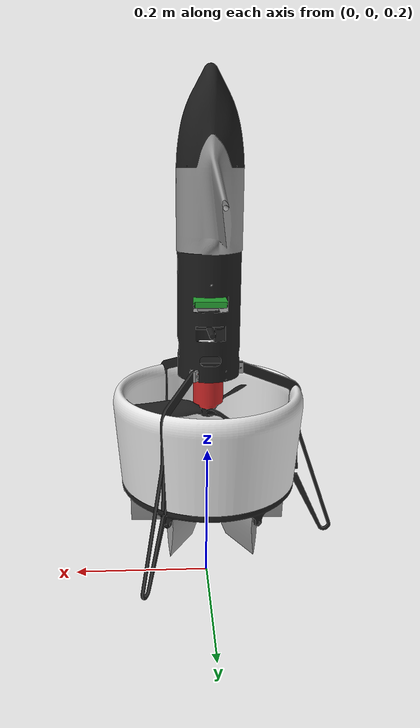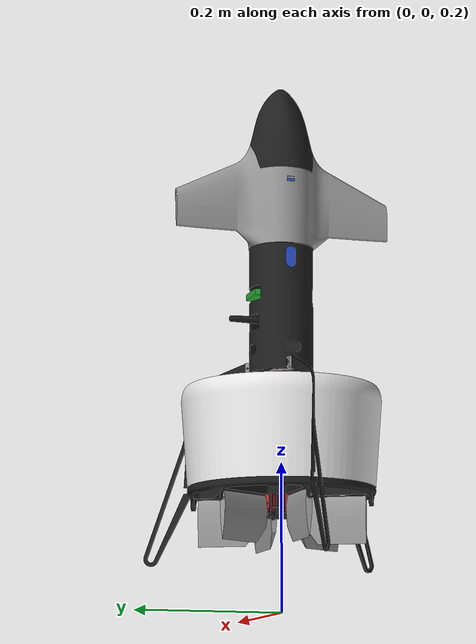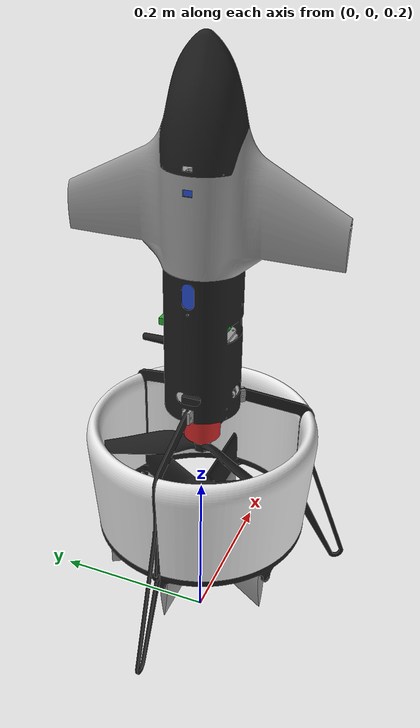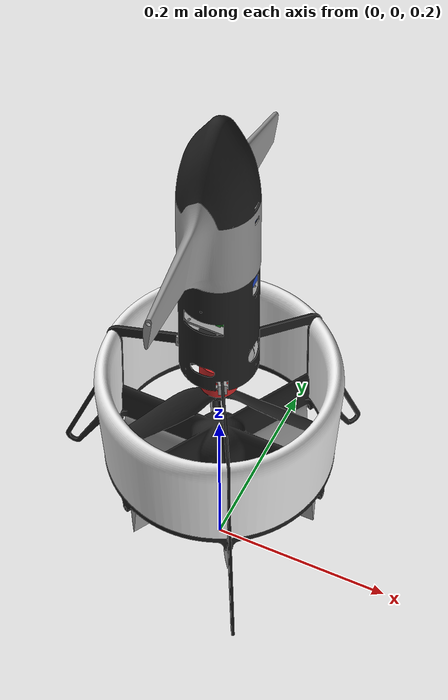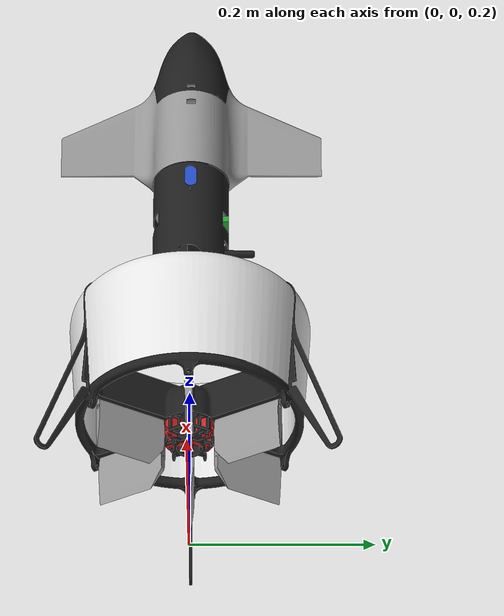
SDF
<?xml version='1.0' encoding='utf-8'?>
<sdf version="1.9">
  <model name="SHC09">
    <pose>0 0 0.5 0 0 0</pose>
    <link name="base_link">
      <inertial>
        <pose>0 0 0.0925 0 0 0</pose>
        <mass>2.03663968</mass>
        <inertia>
          <ixx>0.0438</ixx>
          <ixy>0</ixy>
          <ixz>0</ixz>
          <iyy>0.0436</iyy>
          <iyz>0</iyz>
          <izz>0.005006</izz>
        </inertia>
      </inertial>
      <visual name="visual">
        <pose>0 0 0 0 -0 3.1415926</pose>
        <geometry>
          <mesh>
            <uri>model://SHC09/meshes/Battery-6s-10000-2170.STL</uri>
            <scale>1 1 1</scale>
          </mesh>
        </geometry>
        <material>
          <lighting>1</lighting>
          <script>
            <uri>file://media/materials/scripts/gazebo.material</uri>
            <name>Gazebo/Blue</name>
          </script>
          <shader type="pixel" />
          <emissive>0 0 0 1</emissive>
        </material>
        <transparency>0</transparency>
        <cast_shadows>1</cast_shadows>
      </visual>
      <collision name="collision">
        <pose>0.0 -0.0 0.07 0 -0 0</pose>
        <geometry>
          <box>
            <size>0.25 0.25 0.6</size>
          </box>
        </geometry>
      </collision>
      <gravity>1</gravity>
      <velocity_decay />
      <self_collide>0</self_collide>
      <sensor name="imu_sensor" type="imu">
        <gz_frame_id>base_link</gz_frame_id>
        <always_on>1</always_on>
        <update_rate>250</update_rate>
        <imu>
          <angular_velocity>
            <x>
              <noise type="gaussian">
                <mean>0</mean>
                <stddev>0.0003394</stddev>
                <dynamic_bias_stddev>3.8785e-05</dynamic_bias_stddev>
                <dynamic_bias_correlation_time>1000</dynamic_bias_correlation_time>
              </noise>
            </x>
            <y>
              <noise type="gaussian">
                <mean>0</mean>
                <stddev>0.0003394</stddev>
                <dynamic_bias_stddev>3.8785e-05</dynamic_bias_stddev>
                <dynamic_bias_correlation_time>1000</dynamic_bias_correlation_time>
              </noise>
            </y>
            <z>
              <noise type="gaussian">
                <mean>0</mean>
                <stddev>0.0003394</stddev>
                <dynamic_bias_stddev>3.8785e-05</dynamic_bias_stddev>
                <dynamic_bias_correlation_time>1000</dynamic_bias_correlation_time>
              </noise>
            </z>
          </angular_velocity>
          <linear_acceleration>
            <x>
              <noise type="gaussian">
                <mean>0</mean>
                <stddev>0.004</stddev>
                <dynamic_bias_stddev>0.006</dynamic_bias_stddev>
                <dynamic_bias_correlation_time>300</dynamic_bias_correlation_time>
              </noise>
            </x>
            <y>
              <noise type="gaussian">
                <mean>0</mean>
                <stddev>0.004</stddev>
                <dynamic_bias_stddev>0.006</dynamic_bias_stddev>
                <dynamic_bias_correlation_time>300</dynamic_bias_correlation_time>
              </noise>
            </y>
            <z>
              <noise type="gaussian">
                <mean>0</mean>
                <stddev>0.004</stddev>
                <dynamic_bias_stddev>0.006</dynamic_bias_stddev>
                <dynamic_bias_correlation_time>300</dynamic_bias_correlation_time>
              </noise>
            </z>
          </linear_acceleration>
        </imu>
      </sensor>
      <sensor name="air_pressure_sensor" type="air_pressure">
        <gz_frame_id>base_link</gz_frame_id>
        <always_on>1</always_on>
        <update_rate>50</update_rate>
        <air_pressure>
          <pressure>
            <noise type="gaussian">
              <mean>0</mean>
              <stddev>0.01</stddev>
            </noise>
          </pressure>
        </air_pressure>
      </sensor>
      <sensor name="magnetometer_sensor" type="magnetometer">
        <gz_frame_id>base_link</gz_frame_id>
        <always_on>1</always_on>
        <update_rate>100</update_rate>
        <magnetometer>
          <x>
            <noise type="gaussian">
              <stddev>0.0001</stddev>
            </noise>
          </x>
          <y>
            <noise type="gaussian">
              <stddev>0.0001</stddev>
            </noise>
          </y>
          <z>
            <noise type="gaussian">
              <stddev>0.0001</stddev>
            </noise>
          </z>
        </magnetometer>
      </sensor>
      <sensor name="navsat_sensor" type="navsat">
        <gz_frame_id>base_link</gz_frame_id>
        <always_on>1</always_on>
        <update_rate>30</update_rate>
      </sensor>
    </link>
    <link name="link_1">
      <inertial>
        <mass>0.00000001</mass>
        <inertia>
          <ixx>0.000001</ixx>
          <ixy>0.0</ixy>
          <iyy>0.000001</iyy>
          <ixz>0.0</ixz>
          <iyz>0.0</iyz>
          <izz>0.000001</izz>
        </inertia>
      </inertial>
      <visual name="visual">
        <pose>0 0 0 0 -0 3.1415926</pose>
        <geometry>
          <mesh>
            <uri>model://SHC09/meshes/bec-Hobbywing-Platinum 60A.STL</uri>
            <scale>1 1 1</scale>
          </mesh>
        </geometry>
        <material>
          <lighting>1</lighting>
          <script>
            <uri>file://media/materials/scripts/gazebo.material</uri>
            <name>Gazebo/Black</name>
          </script>
          <shader type="pixel" />
          <emissive>0 0 0 1</emissive>
        </material>
        <transparency>0</transparency>
        <cast_shadows>1</cast_shadows>
      </visual>
    </link>
    <link name="link_10">
      <inertial>
        <mass>0.00000001</mass>
        <inertia>
          <ixx>0.000001</ixx>
          <ixy>0.0</ixy>
          <iyy>0.000001</iyy>
          <ixz>0.0</ixz>
          <iyz>0.0</iyz>
          <izz>0.000001</izz>
        </inertia>
      </inertial>
      <visual name="visual">
        <pose>0 0 0 0 -0 3.1415926</pose>
        <geometry>
          <mesh>
            <uri>model://SHC09/meshes/duct-b-SHW09.STL</uri>
            <scale>1 1 1</scale>
          </mesh>
        </geometry>
        <material>
          <lighting>1</lighting>
          <script>
            <uri>file://media/materials/scripts/gazebo.material</uri>
            <name>Gazebo/Black</name>
          </script>
          <shader type="pixel" />
          <emissive>0 0 0 1</emissive>
        </material>
        <transparency>0</transparency>
        <cast_shadows>1</cast_shadows>
      </visual>
    </link>
    <link name="link_11">
      <inertial>
        <mass>0.00000001</mass>
        <inertia>
          <ixx>0.000001</ixx>
          <ixy>0.0</ixy>
          <iyy>0.000001</iyy>
          <ixz>0.0</ixz>
          <iyz>0.0</iyz>
          <izz>0.000001</izz>
        </inertia>
      </inertial>
      <visual name="visual">
        <pose>0 0 0 0 -0 3.1415926</pose>
        <geometry>
          <mesh>
            <uri>model://SHC09/meshes/duct-SH09-1.STL</uri>
            <scale>1 1 1</scale>
          </mesh>
        </geometry>
        <material>
          <lighting>1</lighting>
          <script>
            <uri>file://media/materials/scripts/gazebo.material</uri>
            <name>Gazebo/White</name>
          </script>
          <shader type="pixel" />
          <emissive>0 0 0 1</emissive>
        </material>
        <transparency>0</transparency>
        <cast_shadows>1</cast_shadows>
      </visual>
    </link>
    <link name="link_12">
      <inertial>
        <mass>0.00000001</mass>
        <inertia>
          <ixx>0.000001</ixx>
          <ixy>0.0</ixy>
          <iyy>0.000001</iyy>
          <ixz>0.0</ixz>
          <iyz>0.0</iyz>
          <izz>0.000001</izz>
        </inertia>
      </inertial>
      <visual name="visual">
        <pose>0 0 0 0 -0 3.1415926</pose>
        <geometry>
          <mesh>
            <uri>model://SHC09/meshes/duct-SH09-2.STL</uri>
            <scale>1 1 1</scale>
          </mesh>
        </geometry>
        <material>
          <lighting>1</lighting>
          <script>
            <uri>file://media/materials/scripts/gazebo.material</uri>
            <name>Gazebo/White</name>
          </script>
          <shader type="pixel" />
          <emissive>0 0 0 1</emissive>
        </material>
        <transparency>0</transparency>
        <cast_shadows>1</cast_shadows>
      </visual>
    </link>
    <link name="link_13">
      <inertial>
        <mass>0.00000001</mass>
        <inertia>
          <ixx>0.000001</ixx>
          <ixy>0.0</ixy>
          <iyy>0.000001</iyy>
          <ixz>0.0</ixz>
          <iyz>0.0</iyz>
          <izz>0.000001</izz>
        </inertia>
      </inertial>
      <visual name="visual">
        <pose>0 0 0 0 -0 3.1415926</pose>
        <geometry>
          <mesh>
            <uri>model://SHC09/meshes/duct-SH09-3.STL</uri>
            <scale>1 1 1</scale>
          </mesh>
        </geometry>
        <material>
          <lighting>1</lighting>
          <script>
            <uri>file://media/materials/scripts/gazebo.material</uri>
            <name>Gazebo/White</name>
          </script>
          <shader type="pixel" />
          <emissive>0 0 0 1</emissive>
        </material>
        <transparency>0</transparency>
        <cast_shadows>1</cast_shadows>
      </visual>
    </link>
    <link name="link_14">
      <inertial>
        <mass>0.00000001</mass>
        <inertia>
          <ixx>0.000001</ixx>
          <ixy>0.0</ixy>
          <iyy>0.000001</iyy>
          <ixz>0.0</ixz>
          <iyz>0.0</iyz>
          <izz>0.000001</izz>
        </inertia>
      </inertial>
      <visual name="visual">
        <pose>0 0 0 0 -0 3.1415926</pose>
        <geometry>
          <mesh>
            <uri>model://SHC09/meshes/fuselage-09.STL</uri>
            <scale>1 1 1</scale>
          </mesh>
        </geometry>
        <material>
          <lighting>1</lighting>
          <script>
            <uri>file://media/materials/scripts/gazebo.material</uri>
            <name>Gazebo/Black</name>
          </script>
          <shader type="pixel" />
          <emissive>0 0 0 1</emissive>
        </material>
        <transparency>0</transparency>
        <cast_shadows>1</cast_shadows>
      </visual>
    </link>
    <link name="link_15">
      <inertial>
        <mass>0.00000001</mass>
        <inertia>
          <ixx>0.000001</ixx>
          <ixy>0.0</ixy>
          <iyy>0.000001</iyy>
          <ixz>0.0</ixz>
          <iyz>0.0</iyz>
          <izz>0.000001</izz>
        </inertia>
      </inertial>
      <visual name="visual">
        <pose>0 0 0 0 -0 3.1415926</pose>
        <geometry>
          <mesh>
            <uri>model://SHC09/meshes/head-SHC09-1.STL</uri>
            <scale>1 1 1</scale>
          </mesh>
        </geometry>
        <material>
          <lighting>1</lighting>
          <script>
            <uri>file://media/materials/scripts/gazebo.material</uri>
            <name>Gazebo/Black</name>
          </script>
          <shader type="pixel" />
          <emissive>0 0 0 1</emissive>
        </material>
        <transparency>0</transparency>
        <cast_shadows>1</cast_shadows>
      </visual>
    </link>
    <link name="link_16">
      <inertial>
        <mass>0.00000001</mass>
        <inertia>
          <ixx>0.000001</ixx>
          <ixy>0.0</ixy>
          <iyy>0.000001</iyy>
          <ixz>0.0</ixz>
          <iyz>0.0</iyz>
          <izz>0.000001</izz>
        </inertia>
      </inertial>
      <visual name="visual">
        <pose>0 0 0 0 -0 3.1415926</pose>
        <geometry>
          <mesh>
            <uri>model://SHC09/meshes/head-SHC09-2.STL</uri>
            <scale>1 1 1</scale>
          </mesh>
        </geometry>
        <material>
          <lighting>1</lighting>
          <script>
            <uri>file://media/materials/scripts/gazebo.material</uri>
            <name>Gazebo/Grey</name>
          </script>
          <shader type="pixel" />
          <emissive>0 0 0 1</emissive>
        </material>
        <transparency>0</transparency>
        <cast_shadows>1</cast_shadows>
      </visual>
    </link>
    <link name="link_17">
      <inertial>
        <mass>0.00000001</mass>
        <inertia>
          <ixx>0.000001</ixx>
          <ixy>0.0</ixy>
          <iyy>0.000001</iyy>
          <ixz>0.0</ixz>
          <iyz>0.0</iyz>
          <izz>0.000001</izz>
        </inertia>
      </inertial>
      <visual name="visual">
        <pose>0 0 0 0 -0 3.1415926</pose>
        <geometry>
          <mesh>
            <uri>model://SHC09/meshes/motor-Sunnysky-X3520-7-780KV III.STL</uri>
            <scale>1 1 1</scale>
          </mesh>
        </geometry>
        <material>
          <lighting>1</lighting>
          <script>
            <uri>file://media/materials/scripts/gazebo.material</uri>
            <name>Gazebo/Red</name>
          </script>
          <shader type="pixel" />
          <emissive>0 0 0 1</emissive>
        </material>
        <transparency>0</transparency>
        <cast_shadows>1</cast_shadows>
      </visual>
    </link>
    <link name="rotor">
      <inertial>
        <mass>0.01836</mass>
        <inertia>
          <ixx>0.000019</ixx>
          <ixy>0</ixy>
          <ixz>0</ixz>
          <iyy>0.000019</iyy>
          <iyz>0</iyz>
          <izz>0.000037</izz>
        </inertia>
        <pose>-0.0 -0.0 -0.04250779552 0 -0 0</pose>
      </inertial>
      <gravity>1</gravity>
      <self_collide>0</self_collide>
      <kinematic>0</kinematic>
      <enable_wind>0</enable_wind>
      <visual name="visual">
        <pose>0 0 0 0 -0 3.1415926</pose>
        <geometry>
          <mesh>
            <uri>model://SHC09/meshes/Rotor-iflight-13inch-2-CW-cut9.STL</uri>
            <scale>1 1 1</scale>
          </mesh>
        </geometry>
        <material>
          <lighting>1</lighting>
          <script>
            <uri>file://media/materials/scripts/gazebo.material</uri>
            <name>Gazebo/Black</name>
          </script>
          <shader type="pixel" />
          <emissive>0 0 0 1</emissive>
        </material>
        <transparency>0</transparency>
        <cast_shadows>1</cast_shadows>
      </visual>
    </link>
    <link name="link_19">
      <inertial>
        <mass>0.00000001</mass>
        <inertia>
          <ixx>0.000001</ixx>
          <ixy>0.0</ixy>
          <iyy>0.000001</iyy>
          <ixz>0.0</ixz>
          <iyz>0.0</iyz>
          <izz>0.000001</izz>
        </inertia>
      </inertial>
      <visual name="visual">
        <pose>0 0 0 0 -0 3.1415926</pose>
        <geometry>
          <mesh>
            <uri>model://SHC09/meshes/RTK-antenna.STL</uri>
            <scale>1 1 1</scale>
          </mesh>
        </geometry>
        <material>
          <lighting>1</lighting>
          <script>
            <uri>file://media/materials/scripts/gazebo.material</uri>
            <name>Gazebo/Grey</name>
          </script>
          <shader type="pixel" />
          <emissive>0 0 0 1</emissive>
        </material>
        <transparency>0</transparency>
        <cast_shadows>1</cast_shadows>
      </visual>
    </link>
    <link name="link_2">
      <inertial>
        <mass>0.00000001</mass>
        <inertia>
          <ixx>0.000001</ixx>
          <ixy>0.0</ixy>
          <iyy>0.000001</iyy>
          <ixz>0.0</ixz>
          <iyz>0.0</iyz>
          <izz>0.000001</izz>
        </inertia>
      </inertial>
      <visual name="visual">
        <pose>0 0 0 0 -0 3.1415926</pose>
        <geometry>
          <mesh>
            <uri>model://SHC09/meshes/box up-09.STL</uri>
            <scale>1 1 1</scale>
          </mesh>
        </geometry>
        <material>
          <lighting>1</lighting>
          <script>
            <uri>file://media/materials/scripts/gazebo.material</uri>
            <name>Gazebo/Grey</name>
          </script>
          <shader type="pixel" />
          <emissive>0 0 0 1</emissive>
        </material>
        <transparency>0</transparency>
        <cast_shadows>1</cast_shadows>
      </visual>
    </link>
    <link name="link_20">
      <inertial>
        <mass>0.00000001</mass>
        <inertia>
          <ixx>0.000001</ixx>
          <ixy>0.0</ixy>
          <iyy>0.000001</iyy>
          <ixz>0.0</ixz>
          <iyz>0.0</iyz>
          <izz>0.000001</izz>
        </inertia>
        <pose>0.018145 0 -0.152522 0 -0 0</pose>
      </inertial>
      <visual name="visual">
        <pose>0 0 0 0 -0 3.1415926</pose>
        <geometry>
          <mesh>
            <uri>model://SHC09/meshes/servo-KST-X08H-1.STL</uri>
            <scale>1 1 1</scale>
          </mesh>
        </geometry>
        <material>
          <lighting>1</lighting>
          <script>
            <uri>file://media/materials/scripts/gazebo.material</uri>
            <name>Gazebo/Red</name>
          </script>
          <shader type="pixel" />
          <emissive>0 0 0 1</emissive>
        </material>
        <transparency>0</transparency>
        <cast_shadows>1</cast_shadows>
      </visual>
    </link>
    <link name="link_21">
      <inertial>
        <mass>0.00000001</mass>
        <inertia>
          <ixx>0.000001</ixx>
          <ixy>0.0</ixy>
          <iyy>0.000001</iyy>
          <ixz>0.0</ixz>
          <iyz>0.0</iyz>
          <izz>0.000001</izz>
        </inertia>
        <pose>0.009 -0.015714 -0.152522 0 -0 0</pose>
      </inertial>
      <visual name="visual">
        <pose>0 0 0 0 -0 3.1415926</pose>
        <geometry>
          <mesh>
            <uri>model://SHC09/meshes/servo-KST-X08H-2.STL</uri>
            <scale>1 1 1</scale>
          </mesh>
        </geometry>
        <material>
          <lighting>1</lighting>
          <script>
            <uri>file://media/materials/scripts/gazebo.material</uri>
            <name>Gazebo/Red</name>
          </script>
          <shader type="pixel" />
          <emissive>0 0 0 1</emissive>
        </material>
        <transparency>0</transparency>
        <cast_shadows>1</cast_shadows>
      </visual>
    </link>
    <link name="link_22">
      <inertial>
        <mass>0.00000001</mass>
        <inertia>
          <ixx>0.000001</ixx>
          <ixy>0.0</ixy>
          <iyy>0.000001</iyy>
          <ixz>0.0</ixz>
          <iyz>0.0</iyz>
          <izz>0.000001</izz>
        </inertia>
        <pose>-0.009072 -0.015714 -0.152522 0 -0 0</pose>
      </inertial>
      <visual name="visual">
        <pose>0 0 0 0 -0 3.1415926</pose>
        <geometry>
          <mesh>
            <uri>model://SHC09/meshes/servo-KST-X08H-3.STL</uri>
            <scale>1 1 1</scale>
          </mesh>
        </geometry>
        <material>
          <lighting>1</lighting>
          <script>
            <uri>file://media/materials/scripts/gazebo.material</uri>
            <name>Gazebo/Red</name>
          </script>
          <shader type="pixel" />
          <emissive>0 0 0 1</emissive>
        </material>
        <transparency>0</transparency>
        <cast_shadows>1</cast_shadows>
      </visual>
    </link>
    <link name="link_23">
      <inertial>
        <mass>0.00000001</mass>
        <inertia>
          <ixx>0.000001</ixx>
          <ixy>0.0</ixy>
          <iyy>0.000001</iyy>
          <ixz>0.0</ixz>
          <iyz>0.0</iyz>
          <izz>0.000001</izz>
        </inertia>
        <pose>-0.018145 0 -0.152522 0 -0 0</pose>
      </inertial>
      <visual name="visual">
        <pose>0 0 0 0 -0 3.1415926</pose>
        <geometry>
          <mesh>
            <uri>model://SHC09/meshes/servo-KST-X08H-4.STL</uri>
            <scale>1 1 1</scale>
          </mesh>
        </geometry>
        <material>
          <lighting>1</lighting>
          <script>
            <uri>file://media/materials/scripts/gazebo.material</uri>
            <name>Gazebo/Red</name>
          </script>
          <shader type="pixel" />
          <emissive>0 0 0 1</emissive>
        </material>
        <transparency>0</transparency>
        <cast_shadows>1</cast_shadows>
      </visual>
    </link>
    <link name="link_24">
      <inertial>
        <mass>0.00000001</mass>
        <inertia>
          <ixx>0.000001</ixx>
          <ixy>0.0</ixy>
          <iyy>0.000001</iyy>
          <ixz>0.0</ixz>
          <iyz>0.0</iyz>
          <izz>0.000001</izz>
        </inertia>
        <pose>-0.009072 0.015714 -0.152522 0 -0 0</pose>
      </inertial>
      <visual name="visual">
        <pose>0 0 0 0 -0 3.1415926</pose>
        <geometry>
          <mesh>
            <uri>model://SHC09/meshes/servo-KST-X08H-5.STL</uri>
            <scale>1 1 1</scale>
          </mesh>
        </geometry>
        <material>
          <lighting>1</lighting>
          <script>
            <uri>file://media/materials/scripts/gazebo.material</uri>
            <name>Gazebo/Red</name>
          </script>
          <shader type="pixel" />
          <emissive>0 0 0 1</emissive>
        </material>
        <transparency>0</transparency>
        <cast_shadows>1</cast_shadows>
      </visual>
    </link>
    <link name="link_25">
      <inertial>
        <mass>0.00000001</mass>
        <inertia>
          <ixx>0.000001</ixx>
          <ixy>0.0</ixy>
          <iyy>0.000001</iyy>
          <ixz>0.0</ixz>
          <iyz>0.0</iyz>
          <izz>0.000001</izz>
        </inertia>
        <pose>0.009072 0.015714 -0.152522 0 -0 0</pose>
      </inertial>
      <visual name="visual">
        <pose>0 0 0 0 -0 3.1415926</pose>
        <geometry>
          <mesh>
            <uri>model://SHC09/meshes/servo-KST-X08H-6.STL</uri>
            <scale>1 1 1</scale>
          </mesh>
        </geometry>
        <material>
          <lighting>1</lighting>
          <script>
            <uri>file://media/materials/scripts/gazebo.material</uri>
            <name>Gazebo/Red</name>
          </script>
          <shader type="pixel" />
          <emissive>0 0 0 1</emissive>
        </material>
        <transparency>0</transparency>
        <cast_shadows>1</cast_shadows>
      </visual>
    </link>
    <link name="link_26">
      <inertial>
        <mass>0.00000001</mass>
        <inertia>
          <ixx>0.000001</ixx>
          <ixy>0.0</ixy>
          <iyy>0.000001</iyy>
          <ixz>0.0</ixz>
          <iyz>0.0</iyz>
          <izz>0.000001</izz>
        </inertia>
      </inertial>
      <visual name="visual">
        <pose>0 0 0 0 -0 3.1415926</pose>
        <geometry>
          <mesh>
            <uri>model://SHC09/meshes/shelf1-SHC09.STL</uri>
            <scale>1 1 1</scale>
          </mesh>
        </geometry>
        <material>
          <lighting>1</lighting>
          <script>
            <uri>file://media/materials/scripts/gazebo.material</uri>
            <name>Gazebo/Grey</name>
          </script>
          <shader type="pixel" />
          <emissive>0 0 0 1</emissive>
        </material>
        <transparency>0</transparency>
        <cast_shadows>1</cast_shadows>
      </visual>
    </link>
    <link name="link_27">
      <inertial>
        <mass>0.00000001</mass>
        <inertia>
          <ixx>0.000001</ixx>
          <ixy>0.0</ixy>
          <iyy>0.000001</iyy>
          <ixz>0.0</ixz>
          <iyz>0.0</iyz>
          <izz>0.000001</izz>
        </inertia>
      </inertial>
      <visual name="visual">
        <pose>0 0 0 0 -0 3.1415926</pose>
        <geometry>
          <mesh>
            <uri>model://SHC09/meshes/shelf2-SHC09.STL</uri>
            <scale>1 1 1</scale>
          </mesh>
        </geometry>
        <material>
          <lighting>1</lighting>
          <script>
            <uri>file://media/materials/scripts/gazebo.material</uri>
            <name>Gazebo/Grey</name>
          </script>
          <shader type="pixel" />
          <emissive>0 0 0 1</emissive>
        </material>
        <transparency>0</transparency>
        <cast_shadows>1</cast_shadows>
      </visual>
    </link>
    <link name="link_28">
      <inertial>
        <mass>0.00000001</mass>
        <inertia>
          <ixx>0.000001</ixx>
          <ixy>0.0</ixy>
          <iyy>0.000001</iyy>
          <ixz>0.0</ixz>
          <iyz>0.0</iyz>
          <izz>0.000001</izz>
        </inertia>
      </inertial>
      <visual name="visual">
        <pose>0 0 0 0 -0 3.1415926</pose>
        <geometry>
          <mesh>
            <uri>model://SHC09/meshes/shelf3-09.STL</uri>
            <scale>1 1 1</scale>
          </mesh>
        </geometry>
        <material>
          <lighting>1</lighting>
          <script>
            <uri>file://media/materials/scripts/gazebo.material</uri>
            <name>Gazebo/Grey</name>
          </script>
          <shader type="pixel" />
          <emissive>0 0 0 1</emissive>
        </material>
        <transparency>0</transparency>
        <cast_shadows>1</cast_shadows>
      </visual>
    </link>
    <link name="link_29">
      <inertial>
        <mass>0.00000001</mass>
        <inertia>
          <ixx>0.000001</ixx>
          <ixy>0.0</ixy>
          <iyy>0.000001</iyy>
          <ixz>0.0</ixz>
          <iyz>0.0</iyz>
          <izz>0.000001</izz>
        </inertia>
      </inertial>
      <visual name="visual">
        <pose>0 0 0 0 -0 3.1415926</pose>
        <geometry>
          <mesh>
            <uri>model://SHC09/meshes/shelf4-09.STL</uri>
            <scale>1 1 1</scale>
          </mesh>
        </geometry>
        <material>
          <lighting>1</lighting>
          <script>
            <uri>file://media/materials/scripts/gazebo.material</uri>
            <name>Gazebo/Grey</name>
          </script>
          <shader type="pixel" />
          <emissive>0 0 0 1</emissive>
        </material>
        <transparency>0</transparency>
        <cast_shadows>1</cast_shadows>
      </visual>
    </link>
    <link name="CS4">
      <inertial>
        <mass>0.00000001</mass>
        <inertia>
          <ixx>0.000001</ixx>
          <ixy>0.0</ixy>
          <iyy>0.000001</iyy>
          <ixz>0.0</ixz>
          <iyz>0.0</iyz>
          <izz>0.000001</izz>
        </inertia>
        <pose>-0.073 0 -0.174479 0 -0 0</pose>
      </inertial>
      <visual name="visual">
        <pose>0 0 0 0 -0 3.1415926</pose>
        <geometry>
          <mesh>
            <uri>model://SHC09/meshes/control surface-60-80-1.STL</uri>
            <scale>1 1 1</scale>
          </mesh>
        </geometry>
        <material>
          <lighting>1</lighting>
          <script>
            <uri>file://media/materials/scripts/gazebo.material</uri>
            <name>Gazebo/Grey</name>
          </script>
          <shader type="pixel" />
          <emissive>0 0 0 1</emissive>
        </material>
        <transparency>0</transparency>
        <cast_shadows>1</cast_shadows>
      </visual>
    </link>
    <link name="link_30">
      <inertial>
        <mass>0.00000001</mass>
        <inertia>
          <ixx>0.000001</ixx>
          <ixy>0.0</ixy>
          <iyy>0.000001</iyy>
          <ixz>0.0</ixz>
          <iyz>0.0</iyz>
          <izz>0.000001</izz>
        </inertia>
      </inertial>
      <visual name="visual">
        <pose>0 0 0 0 -0 3.1415926</pose>
        <geometry>
          <mesh>
            <uri>model://SHC09/meshes/tail-SHW09-1.STL</uri>
            <scale>1 1 1</scale>
          </mesh>
        </geometry>
        <material>
          <lighting>1</lighting>
          <script>
            <uri>file://media/materials/scripts/gazebo.material</uri>
            <name>Gazebo/Black</name>
          </script>
          <shader type="pixel" />
          <emissive>0 0 0 1</emissive>
        </material>
        <transparency>0</transparency>
        <cast_shadows>1</cast_shadows>
      </visual>
    </link>
    <link name="link_31">
      <inertial>
        <mass>0.00000001</mass>
        <inertia>
          <ixx>0.000001</ixx>
          <ixy>0.0</ixy>
          <iyy>0.000001</iyy>
          <ixz>0.0</ixz>
          <iyz>0.0</iyz>
          <izz>0.000001</izz>
        </inertia>
      </inertial>
      <visual name="visual">
        <pose>0 0 0 0 -0 3.1415926</pose>
        <geometry>
          <mesh>
            <uri>model://SHC09/meshes/tail-SHW09-2.STL</uri>
            <scale>1 1 1</scale>
          </mesh>
        </geometry>
        <material>
          <lighting>1</lighting>
          <script>
            <uri>file://media/materials/scripts/gazebo.material</uri>
            <name>Gazebo/Black</name>
          </script>
          <shader type="pixel" />
          <emissive>0 0 0 1</emissive>
        </material>
        <transparency>0</transparency>
        <cast_shadows>1</cast_shadows>
      </visual>
    </link>
    <link name="link_32">
      <inertial>
        <mass>0.00000001</mass>
        <inertia>
          <ixx>0.000001</ixx>
          <ixy>0.0</ixy>
          <iyy>0.000001</iyy>
          <ixz>0.0</ixz>
          <iyz>0.0</iyz>
          <izz>0.000001</izz>
        </inertia>
      </inertial>
      <visual name="visual">
        <pose>0 0 0 0 -0 3.1415926</pose>
        <geometry>
          <mesh>
            <uri>model://SHC09/meshes/tail-SHW09-3.STL</uri>
            <scale>1 1 1</scale>
          </mesh>
        </geometry>
        <material>
          <lighting>1</lighting>
          <script>
            <uri>file://media/materials/scripts/gazebo.material</uri>
            <name>Gazebo/Black</name>
          </script>
          <shader type="pixel" />
          <emissive>0 0 0 1</emissive>
        </material>
        <transparency>0</transparency>
        <cast_shadows>1</cast_shadows>
      </visual>
    </link>
    <link name="link_33">
      <inertial>
        <mass>0.00000001</mass>
        <inertia>
          <ixx>0.000001</ixx>
          <ixy>0.0</ixy>
          <iyy>0.000001</iyy>
          <ixz>0.0</ixz>
          <iyz>0.0</iyz>
          <izz>0.000001</izz>
        </inertia>
      </inertial>
      <visual name="visual">
        <pose>0 0 0 0 -0 3.1415926</pose>
        <geometry>
          <mesh>
            <uri>model://SHC09/meshes/X-tend.STL</uri>
            <scale>1 1 1</scale>
          </mesh>
        </geometry>
        <material>
          <lighting>1</lighting>
          <script>
            <uri>file://media/materials/scripts/gazebo.material</uri>
            <name>Gazebo/Black</name>
          </script>
          <shader type="pixel" />
          <emissive>0 0 0 1</emissive>
        </material>
        <transparency>0</transparency>
        <cast_shadows>1</cast_shadows>
      </visual>
    </link>
    <link name="CS3">
      <inertial>
        <mass>0.00000001</mass>
        <inertia>
          <ixx>0.000001</ixx>
          <ixy>0.0</ixy>
          <iyy>0.000001</iyy>
          <ixz>0.0</ixz>
          <iyz>0.0</iyz>
          <izz>0.000001</izz>
        </inertia>
        <pose>-0.036849 0.063825 -0.174479 0 -0 0</pose>
      </inertial>
      <visual name="visual">
        <pose>0 0 0 0 -0 3.1415926</pose>
        <geometry>
          <mesh>
            <uri>model://SHC09/meshes/control surface-60-80-2.STL</uri>
            <scale>1 1 1</scale>
          </mesh>
        </geometry>
        <material>
          <lighting>1</lighting>
          <script>
            <uri>file://media/materials/scripts/gazebo.material</uri>
            <name>Gazebo/Grey</name>
          </script>
          <shader type="pixel" />
          <emissive>0 0 0 1</emissive>
        </material>
        <transparency>0</transparency>
        <cast_shadows>1</cast_shadows>
      </visual>
    </link>
    <link name="CS2">
      <inertial>
        <mass>0.00000001</mass>
        <inertia>
          <ixx>0.000001</ixx>
          <ixy>0.0</ixy>
          <iyy>0.000001</iyy>
          <ixz>0.0</ixz>
          <iyz>0.0</iyz>
          <izz>0.000001</izz>
        </inertia>
        <pose>0.036849 0.063825 -0.174479 0 -0 0</pose>
      </inertial>
      <visual name="visual">
        <pose>0 0 0 0 -0 3.1415926</pose>
        <geometry>
          <mesh>
            <uri>model://SHC09/meshes/control surface-60-80-3.STL</uri>
            <scale>1 1 1</scale>
          </mesh>
        </geometry>
        <material>
          <lighting>1</lighting>
          <script>
            <uri>file://media/materials/scripts/gazebo.material</uri>
            <name>Gazebo/Grey</name>
          </script>
          <shader type="pixel" />
          <emissive>0 0 0 1</emissive>
        </material>
        <transparency>0</transparency>
        <cast_shadows>1</cast_shadows>
      </visual>
    </link>
    <link name="CS1">
      <inertial>
        <mass>0.00000001</mass>
        <inertia>
          <ixx>0.000001</ixx>
          <ixy>0.0</ixy>
          <iyy>0.000001</iyy>
          <ixz>0.0</ixz>
          <iyz>0.0</iyz>
          <izz>0.000001</izz>
        </inertia>
        <pose>0.073699 0 -0.174479 0 -0 0</pose>
      </inertial>
      <visual name="visual">
        <pose>0 0 0 0 -0 3.1415926</pose>
        <geometry>
          <mesh>
            <uri>model://SHC09/meshes/control surface-60-80-4.STL</uri>
            <scale>1 1 1</scale>
          </mesh>
        </geometry>
        <material>
          <lighting>1</lighting>
          <script>
            <uri>file://media/materials/scripts/gazebo.material</uri>
            <name>Gazebo/Grey</name>
          </script>
          <shader type="pixel" />
          <emissive>0 0 0 1</emissive>
        </material>
        <transparency>0</transparency>
        <cast_shadows>1</cast_shadows>
      </visual>
    </link>
    <link name="CS6">
      <inertial>
        <mass>0.00000001</mass>
        <inertia>
          <ixx>0.000001</ixx>
          <ixy>0.0</ixy>
          <iyy>0.000001</iyy>
          <ixz>0.0</ixz>
          <iyz>0.0</iyz>
          <izz>0.000001</izz>
        </inertia>
        <pose>0.036849 -0.063825 -0.174479 0 -0 0</pose>
      </inertial>
      <visual name="visual">
        <pose>0 0 0 0 -0 3.1415926</pose>
        <geometry>
          <mesh>
            <uri>model://SHC09/meshes/control surface-60-80-5.STL</uri>
            <scale>1 1 1</scale>
          </mesh>
        </geometry>
        <material>
          <lighting>1</lighting>
          <script>
            <uri>file://media/materials/scripts/gazebo.material</uri>
            <name>Gazebo/Grey</name>
          </script>
          <shader type="pixel" />
          <emissive>0 0 0 1</emissive>
        </material>
        <transparency>0</transparency>
        <cast_shadows>1</cast_shadows>
      </visual>
    </link>
    <link name="CS5">
      <inertial>
        <mass>0.00000001</mass>
        <inertia>
          <ixx>0.000001</ixx>
          <ixy>0.0</ixy>
          <iyy>0.000001</iyy>
          <ixz>0.0</ixz>
          <iyz>0.0</iyz>
          <izz>0.000001</izz>
        </inertia>
        <pose>-0.036849 -0.063825 -0.174479 0 -0 0</pose>
      </inertial>
      <visual name="visual">
        <pose>0 0 0 0 -0 3.1415926</pose>
        <geometry>
          <mesh>
            <uri>model://SHC09/meshes/control surface-60-80-6.STL</uri>
            <scale>1 1 1</scale>
          </mesh>
        </geometry>
        <material>
          <lighting>1</lighting>
          <script>
            <uri>file://media/materials/scripts/gazebo.material</uri>
            <name>Gazebo/Grey</name>
          </script>
          <shader type="pixel" />
          <emissive>0 0 0 1</emissive>
        </material>
        <transparency>0</transparency>
        <cast_shadows>1</cast_shadows>
      </visual>
    </link>
    <link name="link_9">
      <inertial>
        <mass>0.00000001</mass>
        <inertia>
          <ixx>0.000001</ixx>
          <ixy>0.0</ixy>
          <iyy>0.000001</iyy>
          <ixz>0.0</ixz>
          <iyz>0.0</iyz>
          <izz>0.000001</izz>
        </inertia>
      </inertial>
      <visual name="visual">
        <pose>0 0 0 0 -0 3.1415926</pose>
        <geometry>
          <mesh>
            <uri>model://SHC09/meshes/controller3STL.STL</uri>
            <scale>1 1 1</scale>
          </mesh>
        </geometry>
        <material>
          <lighting>1</lighting>
          <script>
            <uri>file://media/materials/scripts/gazebo.material</uri>
            <name>Gazebo/Green</name>
          </script>
          <shader type="pixel" />
          <emissive>0 0 0 1</emissive>
        </material>
        <transparency>0</transparency>
        <cast_shadows>1</cast_shadows>
      </visual>
    </link>
    <joint name="link_0_JOINT_0" type="fixed">
      <parent>base_link</parent>
      <child>link_1</child>
      <pose>0 0 0 0 -0 0</pose>
    </joint>
    <joint name="link_0_JOINT_10" type="fixed">
      <parent>base_link</parent>
      <child>link_10</child>
      <pose>0 0 0 0 -0 0</pose>
    </joint>
    <joint name="link_0_JOINT_11" type="fixed">
      <parent>base_link</parent>
      <child>link_11</child>
      <pose>0 0 0 0 -0 0</pose>
    </joint>
    <joint name="link_0_JOINT_12" type="fixed">
      <parent>base_link</parent>
      <child>link_12</child>
      <pose>0 0 0 0 -0 0</pose>
    </joint>
    <joint name="link_0_JOINT_13" type="fixed">
      <parent>base_link</parent>
      <child>link_13</child>
      <pose>0 0 0 0 -0 0</pose>
    </joint>
    <joint name="link_0_JOINT_14" type="fixed">
      <parent>base_link</parent>
      <child>link_14</child>
      <pose>0 0 0 0 -0 0</pose>
    </joint>
    <joint name="link_0_JOINT_15" type="fixed">
      <parent>base_link</parent>
      <child>link_15</child>
      <pose>0 0 0 0 -0 0</pose>
    </joint>
    <joint name="link_0_JOINT_16" type="fixed">
      <parent>base_link</parent>
      <child>link_16</child>
      <pose>0 0 0 0 -0 0</pose>
    </joint>
    <joint name="link_0_JOINT_17" type="fixed">
      <parent>base_link</parent>
      <child>link_17</child>
      <pose>0 0 0 0 -0 0</pose>
    </joint>
    <joint name="rotor_joint" type="revolute">
      <parent>base_link</parent>
      <child>rotor</child>
      <pose>0 0 -0.04 0 -0 0</pose>
      <axis>
        <xyz>0 0 1</xyz>
        <limit>
          <lower>-1e+16</lower>
          <upper>1e+16</upper>
          <effort>-1</effort>
          <velocity>-1</velocity>
        </limit>
        <dynamics>
          <spring_reference>0</spring_reference>
          <spring_stiffness>0</spring_stiffness>
          <damping>0.0001</damping>
          <friction>0</friction>
        </dynamics>
      </axis>
      <physics>
        <ode>
          <implicit_spring_damper>1</implicit_spring_damper>
        </ode>
      </physics>
    </joint>
    <joint name="link_0_JOINT_19" type="fixed">
      <parent>base_link</parent>
      <child>link_19</child>
      <pose>0 0 0 0 -0 0</pose>
    </joint>
    <joint name="link_0_JOINT_1" type="fixed">
      <parent>base_link</parent>
      <child>link_2</child>
      <pose>0 0 0 0 -0 0</pose>
    </joint>
    <joint name="link_0_JOINT_20" type="fixed">
      <parent>base_link</parent>
      <child>link_20</child>
      <pose>0 0 0 0 -0 0</pose>
    </joint>
    <joint name="link_0_JOINT_21" type="fixed">
      <parent>base_link</parent>
      <child>link_21</child>
      <pose>0 0 0 0 -0 0</pose>
    </joint>
    <joint name="link_0_JOINT_22" type="fixed">
      <parent>base_link</parent>
      <child>link_22</child>
      <pose>0 0 0 0 -0 0</pose>
    </joint>
    <joint name="link_0_JOINT_23" type="fixed">
      <parent>base_link</parent>
      <child>link_23</child>
      <pose>0 0 0 0 -0 0</pose>
    </joint>
    <joint name="link_0_JOINT_24" type="fixed">
      <parent>base_link</parent>
      <child>link_24</child>
      <pose>0 0 0 0 -0 0</pose>
    </joint>
    <joint name="link_0_JOINT_25" type="fixed">
      <parent>base_link</parent>
      <child>link_25</child>
      <pose>0 0 0 0 -0 0</pose>
    </joint>
    <joint name="link_0_JOINT_26" type="fixed">
      <parent>base_link</parent>
      <child>link_26</child>
      <pose>0 0 0 0 -0 0</pose>
    </joint>
    <joint name="link_0_JOINT_27" type="fixed">
      <parent>base_link</parent>
      <child>link_27</child>
      <pose>0 0 0 0 -0 0</pose>
    </joint>
    <joint name="link_0_JOINT_28" type="fixed">
      <parent>base_link</parent>
      <child>link_28</child>
      <pose>0 0 0 0 -0 0</pose>
    </joint>
    <joint name="link_0_JOINT_29" type="fixed">
      <parent>base_link</parent>
      <child>link_29</child>
      <pose>0 0 0 0 -0 0</pose>
    </joint>
    <joint name="link_0_JOINT_30" type="fixed">
      <parent>base_link</parent>
      <child>link_30</child>
      <pose>0 0 0 0 -0 0</pose>
    </joint>
    <joint name="link_0_JOINT_31" type="fixed">
      <parent>base_link</parent>
      <child>link_31</child>
      <pose>0 0 0 0 -0 0</pose>
    </joint>
    <joint name="link_0_JOINT_32" type="fixed">
      <parent>base_link</parent>
      <child>link_32</child>
      <pose>0 0 0 0 -0 0</pose>
    </joint>
    <joint name="link_0_JOINT_33" type="fixed">
      <parent>base_link</parent>
      <child>link_33</child>
      <pose>0 0 0 0 -0 0</pose>
    </joint>
    <joint name="link_0_JOINT_8" type="fixed">
      <parent>base_link</parent>
      <child>link_9</child>
      <pose>0 0 0 0 -0 0</pose>
    </joint>
    <joint name="CS1_joint" type="revolute">
      <parent>base_link</parent>
      <child>CS1</child>
      <pose>0 0 -0.158 0 0 0</pose>
      <axis>
        <xyz>1 0 0</xyz>
        <limit>
          <lower>-0.6981</lower>
          <upper>0.6981</upper>
        </limit>
        <dynamics>
          <damping>1.0</damping>
        </dynamics>
      </axis>
      <physics>
        <ode>
          <implicit_spring_damper>1</implicit_spring_damper>
        </ode>
      </physics>
    </joint>
    <joint name="CS6_joint" type="revolute">
      <parent>base_link</parent>
      <child>CS6</child>
      <pose>0 0 -0.158 0 -0 -1.0472</pose>
      <axis>
        <xyz>1 0 0</xyz>
        <limit>
          <lower>-0.6981</lower>
          <upper>0.6981</upper>
        </limit>
        <dynamics>
          <damping>1.0</damping>
        </dynamics>
      </axis>
      <physics>
        <ode>
          <implicit_spring_damper>1</implicit_spring_damper>
        </ode>
      </physics>
    </joint>
    <joint name="CS5_joint" type="revolute">
      <parent>base_link</parent>
      <child>CS5</child>
      <pose>0 0 -0.158 0 -0 -2.0944</pose>
      <axis>
        <xyz>1 0 0</xyz>
        <limit>
          <lower>-0.6981</lower>
          <upper>0.6981</upper>
        </limit>
        <dynamics>
          <damping>1.0</damping>
        </dynamics>
      </axis>
      <physics>
        <ode>
          <implicit_spring_damper>1</implicit_spring_damper>
        </ode>
      </physics>
    </joint>
    <joint name="CS4_joint" type="revolute">
      <parent>base_link</parent>
      <child>CS4</child>
      <pose>0 0 -0.158 0 -0 -3.1415</pose>
      <axis>
        <xyz>1 0 0</xyz>
        <limit>
          <lower>-0.6981</lower>
          <upper>0.6981</upper>
        </limit>
        <dynamics>
          <damping>1.0</damping>
        </dynamics>
      </axis>
      <physics>
        <ode>
          <implicit_spring_damper>1</implicit_spring_damper>
        </ode>
      </physics>
    </joint>
    <joint name="CS3_joint" type="revolute">
      <parent>base_link</parent>
      <child>CS3</child>
      <pose>0 0 -0.158 0 0 2.0944</pose>
      <axis>
        <xyz>1 0 0</xyz>
        <limit>
          <lower>-0.6981</lower>
          <upper>0.6981</upper>
        </limit>
        <dynamics>
          <damping>1.0</damping>
        </dynamics>
      </axis>
      <physics>
        <ode>
          <implicit_spring_damper>1</implicit_spring_damper>
        </ode>
      </physics>
    </joint>
    <joint name="CS2_joint" type="revolute">
      <parent>base_link</parent>
      <child>CS2</child>
      <pose>0 0 -0.158 0 0 1.0472</pose>
      <axis>
        <xyz>1 0 0</xyz>
        <limit>
          <lower>-0.6981</lower>
          <upper>0.6981</upper>
        </limit>
        <dynamics>
          <damping>1.0</damping>
        </dynamics>
      </axis>
      <physics>
        <ode>
          <implicit_spring_damper>1</implicit_spring_damper>
        </ode>
      </physics>
    </joint>
    <link name="imu_link">
      <pose>0 0 0 0 0 0</pose>
      <inertial>
        <pose>0 0 0 0 0 0</pose>
        <mass>0.015</mass>
        <inertia>
          <ixx>1e-05</ixx>
          <ixy>0</ixy>
          <ixz>0</ixz>
          <iyy>1e-05</iyy>
          <iyz>0</iyz>
          <izz>1e-05</izz>
        </inertia>
      </inertial>
    </link>
    <joint name="imu_joint" type="revolute">
      <child>imu_link</child>
      <parent>base_link</parent>
      <axis>
        <xyz>1 0 0</xyz>
        <limit>
          <lower>0</lower>
          <upper>0</upper>
          <effort>0</effort>
          <velocity>0</velocity>
        </limit>
        <dynamics>
          <spring_reference>0</spring_reference>
          <spring_stiffness>0</spring_stiffness>
        </dynamics>
      </axis>
    </joint>
    <link name="airspeed_link">
      <pose>0 0 0 0 0 0</pose>
      <inertial>
        <pose>0 0 0 0 0 0</pose>
        <mass>0.015</mass>
        <inertia>
          <ixx>1e-05</ixx>
          <ixy>0</ixy>
          <ixz>0</ixz>
          <iyy>1e-05</iyy>
          <iyz>0</iyz>
          <izz>1e-05</izz>
        </inertia>
      </inertial>
      <sensor name="air_speed" type="air_speed">
        <always_on>1</always_on>
        <update_rate>50</update_rate>
        <air_speed>
          <pressure>
            <noise type="gaussian">
              <mean>0</mean>
              <stddev>0.01</stddev>
            </noise>
          </pressure>
        </air_speed>
      </sensor>
    </link>
    <joint name="airspeed_joint" type="revolute">
      <child>airspeed_link</child>
      <parent>base_link</parent>
      <axis>
        <xyz>1 0 0</xyz>
        <limit>
          <lower>0</lower>
          <upper>0</upper>
          <effort>0</effort>
          <velocity>0</velocity>
        </limit>
        <dynamics>
          <spring_reference>0</spring_reference>
          <spring_stiffness>0</spring_stiffness>
        </dynamics>
      </axis>
    </joint>
    <plugin name="px4::DuctedFanPlugin" filename="DuctedFanPlugin">
      <jointName>rotor_joint</jointName>
      <linkName>rotor</linkName>
      <turningDirection>ccw</turningDirection>
      <timeConstantUp>0.03</timeConstantUp>
      <timeConstantDown>0.03</timeConstantDown>
      <maxRotVelocity>1200</maxRotVelocity>
      <motorConstant>2.937612e-05</motorConstant>
      <thrustVelocityCoupling>-3.7614e-04</thrustVelocityCoupling>
      <thrustAoaCoupling>-2.6733e-04</thrustAoaCoupling>
      <sideForceVelocityCoupling>5.0699e-04</sideForceVelocityCoupling>
      <momentConstant>5.7792e-07</momentConstant>
      <sideForceArmZ>-0.15</sideForceArmZ>
      <thrustCenterOffsetCoeff>2.6619</thrustCenterOffsetCoeff>
      <ductExpansionRatio>0.7</ductExpansionRatio>
      <ductDiskArea>0.0408</ductDiskArea>
      <airDensity>1.225</airDensity>
      <pitchDampingConstant>0.0198</pitchDampingConstant>
      <pitchDampingVelocityCoeff>0.0015</pitchDampingVelocityCoeff>
      <ductTorqueCoeff>5.3688e-04</ductTorqueCoeff>
      <fanInertia>3.7e-05</fanInertia>
      <control_joint_name_1>CS1_joint</control_joint_name_1>
      <control_joint_name_2>CS2_joint</control_joint_name_2>
      <control_joint_name_3>CS3_joint</control_joint_name_3>
      <control_joint_name_4>CS4_joint</control_joint_name_4>
      <control_joint_name_5>CS5_joint</control_joint_name_5>
      <control_joint_name_6>CS6_joint</control_joint_name_6>
      <control_surface_force_coeff>0.0032</control_surface_force_coeff>
      <control_surface_arm_l1>0.267</control_surface_arm_l1>
      <control_surface_arm_l2>0.066</control_surface_arm_l2>
      <control_effectiveness_matrix>
       -1.0     -0.5        0.5        1.0   0.5        -0.5
        0.0    0.8660254   0.8660254   0.0  -0.8660254 -0.8660254
        1.0      1.0        1.0        1.0   1.0        1.0
      </control_effectiveness_matrix>
      <commandSubTopic>command/motor_speed</commandSubTopic>
      <motorNumber>0</motorNumber>
      <ductSplineDtFile>model://SHC09/duct_spline_dt.csv</ductSplineDtFile>
      <ductSplineDnFile>model://SHC09/duct_spline_dn.csv</ductSplineDnFile>
      <wingSplineWlFile>model://SHC09/wing_spline_wl.csv</wingSplineWlFile>
      <wingSplineWdFile>model://SHC09/wing_spline_wd.csv</wingSplineWdFile>
      <wingSplineWmFile>model://SHC09/wing_spline_wm.csv</wingSplineWmFile>
      <rotorVelocitySlowdownSim>10</rotorVelocitySlowdownSim>
    </plugin>
    <plugin name="px4::TorqueDisturbancePlugin" filename="TorqueDisturbancePlugin">
      <link_name>base_link</link_name>
      <start_time>30.0</start_time>
      <running_time>0.0</running_time>
      <bias_x>0.0</bias_x>
      <bias_y>0.0</bias_y>
      <bias_z>0.0</bias_z>
      <amplitude_x>0.1</amplitude_x>
      <amplitude_y>0.1</amplitude_y>
      <amplitude_z>0.01</amplitude_z>
      <frequency_x>0.2</frequency_x>
      <frequency_y>0.4</frequency_y>
      <frequency_z>0.2</frequency_z>
      <force_bias_x>0.0</force_bias_x>
      <force_bias_y>0.0</force_bias_y>
      <force_bias_z>0.0</force_bias_z>
      <force_amplitude_x>1.5</force_amplitude_x>
      <force_amplitude_y>1.0</force_amplitude_y>
      <force_amplitude_z>6.0</force_amplitude_z>
      <force_frequency_x>0.2</force_frequency_x>
      <force_frequency_y>0.4</force_frequency_y>
      <force_frequency_z>0.2</force_frequency_z>
    </plugin>
    <static>0</static>
    <plugin filename="gz-sim-joint-position-controller-system" name="gz::sim::systems::JointPositionController">
      <joint_name>CS1_joint</joint_name>
      <sub_topic>servo_0</sub_topic>
      <p_gain>50</p_gain>
      <i_gain>0</i_gain>
      <d_gain>0</d_gain>
      <cmd_max>20</cmd_max>
      <cmd_min>-20</cmd_min>
    </plugin>
    <plugin filename="gz-sim-joint-position-controller-system" name="gz::sim::systems::JointPositionController">
      <joint_name>CS2_joint</joint_name>
      <sub_topic>servo_1</sub_topic>
      <p_gain>50</p_gain>
      <i_gain>0</i_gain>
      <d_gain>0</d_gain>
      <cmd_max>20</cmd_max>
      <cmd_min>-20</cmd_min>
    </plugin>
    <plugin filename="gz-sim-joint-position-controller-system" name="gz::sim::systems::JointPositionController">
      <joint_name>CS3_joint</joint_name>
      <sub_topic>servo_2</sub_topic>
      <p_gain>50</p_gain>
      <i_gain>0</i_gain>
      <d_gain>0</d_gain>
      <cmd_max>20</cmd_max>
      <cmd_min>-20</cmd_min>
    </plugin>
    <plugin filename="gz-sim-joint-position-controller-system" name="gz::sim::systems::JointPositionController">
      <joint_name>CS4_joint</joint_name>
      <sub_topic>servo_3</sub_topic>
      <p_gain>50</p_gain>
      <i_gain>0</i_gain>
      <d_gain>0</d_gain>
      <cmd_max>20</cmd_max>
      <cmd_min>-20</cmd_min>
    </plugin>
    <plugin filename="gz-sim-joint-position-controller-system" name="gz::sim::systems::JointPositionController">
      <joint_name>CS5_joint</joint_name>
      <sub_topic>servo_4</sub_topic>
      <p_gain>50</p_gain>
      <i_gain>0</i_gain>
      <d_gain>0</d_gain>
      <cmd_max>20</cmd_max>
      <cmd_min>-20</cmd_min>
    </plugin>
    <plugin filename="gz-sim-joint-position-controller-system" name="gz::sim::systems::JointPositionController">
      <joint_name>CS6_joint</joint_name>
      <sub_topic>servo_5</sub_topic>
      <p_gain>50</p_gain>
      <i_gain>0</i_gain>
      <d_gain>0</d_gain>
      <cmd_max>20</cmd_max>
      <cmd_min>-20</cmd_min>
    </plugin>
  </model>
</sdf>
